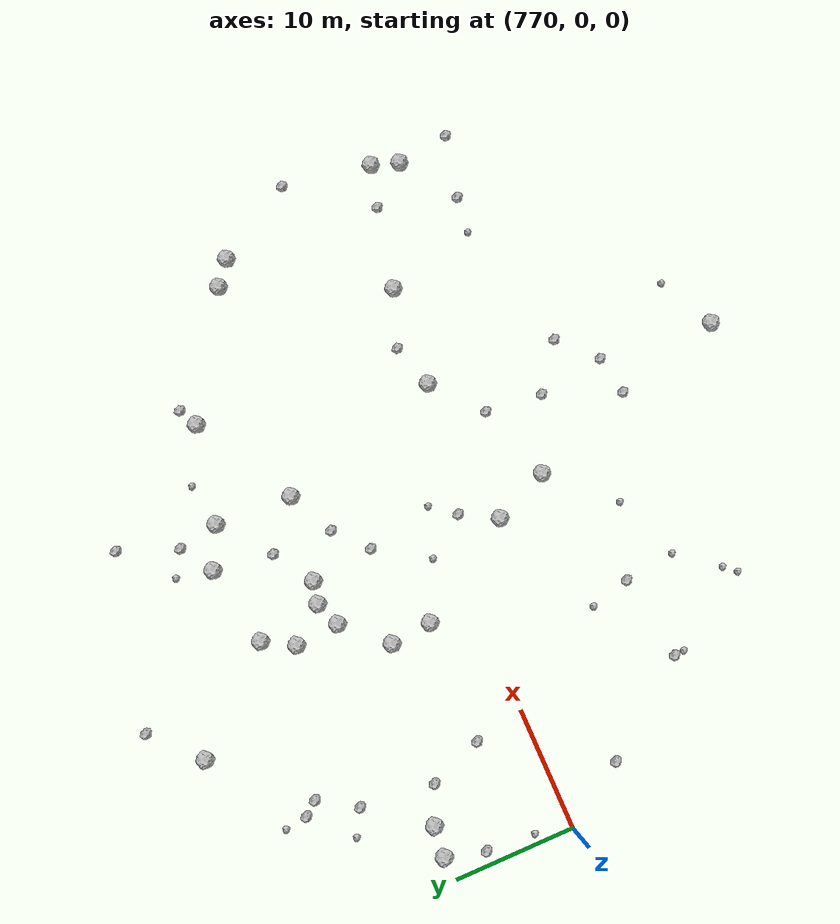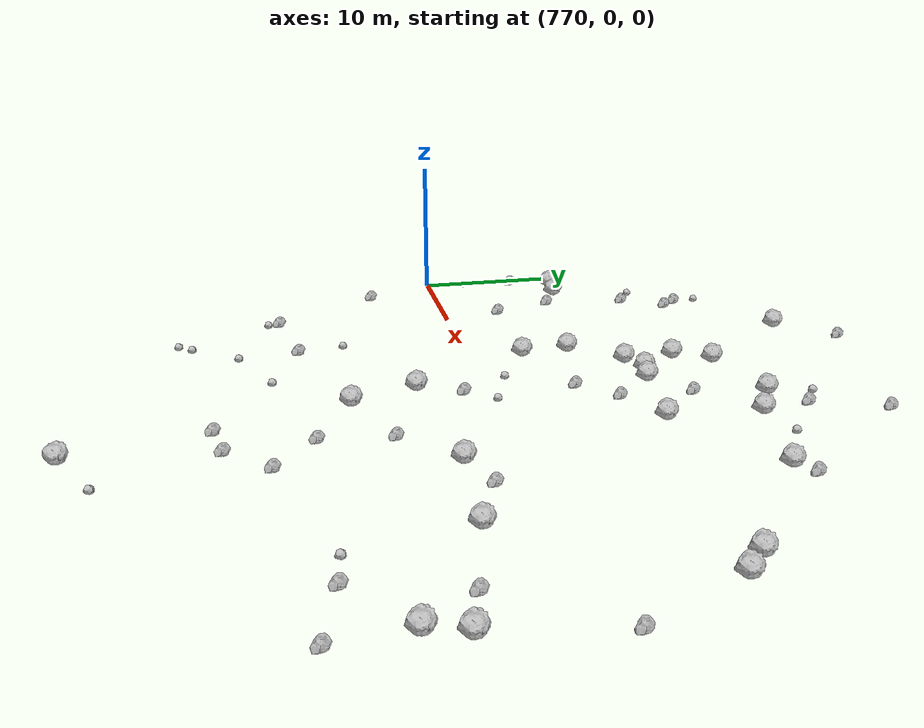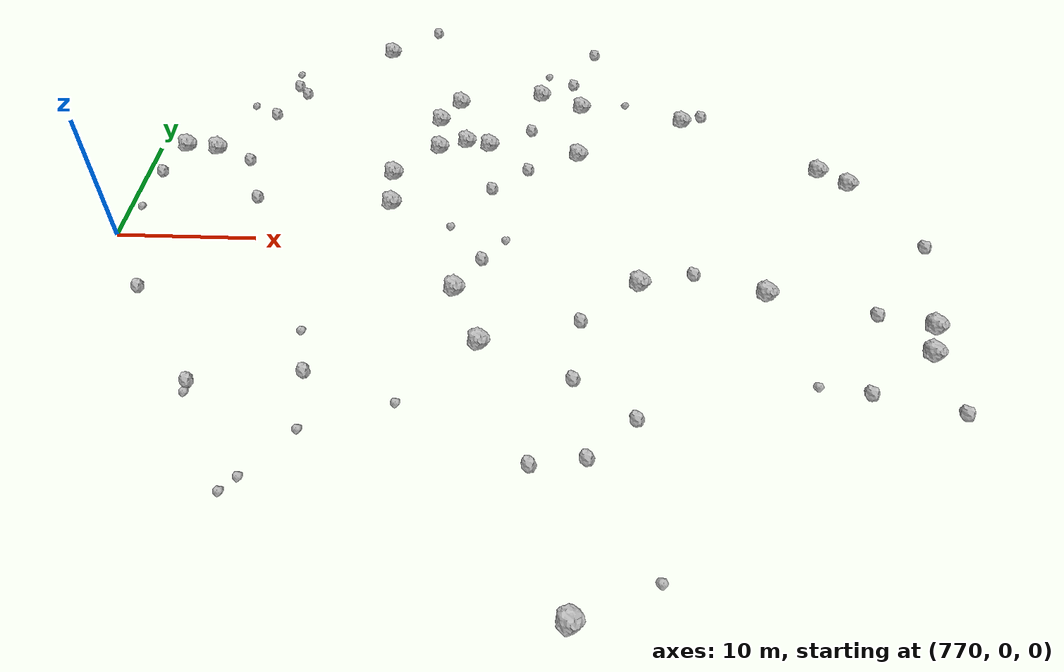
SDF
<sdf version="1.6">
 <world name="default">
  <include><uri>model://sun</uri></include>
  <model name="rock1_20_4">
   <include><uri>model://rock1</uri><pose>825.1159567119994 -8.928115866513519 0.5 0 0 0</pose></include>
  </model>
  <model name="rock1_20_5">
   <include><uri>model://rock1</uri><pose>796.6106471966281 -9.159278414295589 0.5 0 0 0</pose></include>
  </model>
  <model name="rock1_20_6">
   <include><uri>model://rock1</uri><pose>793.2404712534685 16.84364570168505 0.5 0 0 0</pose></include>
  </model>
  <model name="rock1_20_7">
   <include><uri>model://rock1</uri><pose>794.1576030809147 11.53259492437391 0.5 0 0 0</pose></include>
  </model>
  <model name="rock1_20_8">
   <include><uri>model://rock1</uri><pose>802.9822553610561 10.15346565613897 0.5 0 0 0</pose></include>
  </model>
  <model name="rock1_20_9">
   <include><uri>model://rock1</uri><pose>788.8969037220529 7.335678820650372 0.5 0 0 0</pose></include>
  </model>
  <model name="rock1_20_10">
   <include><uri>model://rock1</uri><pose>795.9815703103567 11.134845317435193 0.5 0 0 0</pose></include>
  </model>
  <model name="rock1_20_11">
   <include><uri>model://rock1</uri><pose>802.4278541936328 -26.90009056219109 0.5 0 0 0</pose></include>
  </model>
  <model name="rock1_20_12">
   <include><uri>model://rock1</uri><pose>815.4536748302243 -4.223381143897452 0.5 0 0 0</pose></include>
  </model>
  <model name="rock1_20_13">
   <include><uri>model://rock1</uri><pose>792.0657279402916 10.699101751017686 0.5 0 0 0</pose></include>
  </model>
  <model name="rock1_20_14">
   <include><uri>model://rock1</uri><pose>825.882422189791 -6.670033148492568 0.5 0 0 0</pose></include>
  </model>
  <model name="rock1_20_15">
   <include><uri>model://rock1</uri><pose>789.2179958465065 3.9065360014740094 0.5 0 0 0</pose></include>
  </model>
  <model name="rock1_20_16">
   <include><uri>model://rock1</uri><pose>821.3071238287417 8.9006561176977 0.5 0 0 0</pose></include>
  </model>
  <model name="rock1_20_17">
   <include><uri>model://rock1</uri><pose>807.0481330692334 -3.6402839456061393 0.5 0 0 0</pose></include>
  </model>
  <model name="rock1_20_18">
   <include><uri>model://rock1</uri><pose>803.2871262267237 16.54584143368585 0.5 0 0 0</pose></include>
  </model>
  <model name="rock1_20_19">
   <include><uri>model://rock1</uri><pose>772.0884436128662 10.144734424023568 0.5 0 0 0</pose></include>
  </model>
  <model name="rock1_20_20">
   <include><uri>model://rock1</uri><pose>791.8145706675144 14.331031263290726 0.5 0 0 0</pose></include>
  </model>
  <model name="rock1_20_21">
   <include><uri>model://rock1</uri><pose>811.4343939284064 14.899835773670212 0.5 0 0 0</pose></include>
  </model>
  <model name="rock1_20_22">
   <include><uri>model://rock1</uri><pose>823.2556053300042 7.392306435198776 0.5 0 0 0</pose></include>
  </model>
  <model name="rock1_20_23">
   <include><uri>model://rock1</uri><pose>794.6368168786759 -4.583555178718992 0.5 0 0 0</pose></include>
  </model>
  <model name="rock1_20_24">
   <include><uri>model://rock1</uri><pose>786.4369616322493 24.384099663664486 0.5 0 0 0</pose></include>
  </model>
  <model name="rock1_20_25">
   <include><uri>model://rock1</uri><pose>799.955891548536 18.168966447560912 0.5 0 0 0</pose></include>
  </model>
  <model name="rock1_20_26">
   <include><uri>model://rock1</uri><pose>774.5832831029351 9.895518718811516 0.5 0 0 0</pose></include>
  </model>
  <model name="rock2_20_0">
   <include><uri>model://rock2</uri><pose>825.7671949158455 -13.41481922267079 0.3 0 0 0</pose></include>
  </model>
  <model name="rock2_20_1">
   <include><uri>model://rock2</uri><pose>799.2330110080585 13.265468129560283 0.3 0 0 0</pose></include>
  </model>
  <model name="rock2_20_2">
   <include><uri>model://rock2</uri><pose>786.013915224378 -11.879575244355866 0.3 0 0 0</pose></include>
  </model>
  <model name="rock2_20_3">
   <include><uri>model://rock2</uri><pose>803.0469571540467 -7.069023296466664 0.3 0 0 0</pose></include>
  </model>
  <model name="rock2_20_4">
   <include><uri>model://rock2</uri><pose>773.3754721233886 -5.18132096699048 0.3 0 0 0</pose></include>
  </model>
  <model name="rock2_20_5">
   <include><uri>model://rock2</uri><pose>778.1676009110859 14.690795406859309 0.3 0 0 0</pose></include>
  </model>
  <model name="rock2_20_6">
   <include><uri>model://rock2</uri><pose>777.506715085934 8.602867743687547 0.3 0 0 0</pose></include>
  </model>
  <model name="rock2_20_7">
   <include><uri>model://rock2</uri><pose>799.128663883559 8.265025157131184 0.3 0 0 0</pose></include>
  </model>
  <model name="rock2_20_8">
   <include><uri>model://rock2</uri><pose>790.1401271103475 27.95558336156865 0.3 0 0 0</pose></include>
  </model>
  <model name="rock2_20_9">
   <include><uri>model://rock2</uri><pose>771.1513464226414 6.94110135394007 0.3 0 0 0</pose></include>
  </model>
  <model name="rock2_20_10">
   <include><uri>model://rock2</uri><pose>796.4996205296937 5.910016975697303 0.3 0 0 0</pose></include>
  </model>
  <model name="rock2_20_11">
   <include><uri>model://rock2</uri><pose>802.5529272810104 -11.815918915711087 0.3 0 0 0</pose></include>
  </model>
  <model name="rock2_20_12">
   <include><uri>model://rock2</uri><pose>802.6117835167436 19.93698363188725 0.3 0 0 0</pose></include>
  </model>
  <model name="rock2_20_13">
   <include><uri>model://rock2</uri><pose>779.1657434721827 4.222650107796653 0.3 0 0 0</pose></include>
  </model>
  <model name="rock2_20_14">
   <include><uri>model://rock2</uri><pose>813.0376240772353 15.732575748918116 0.3 0 0 0</pose></include>
  </model>
  <model name="rock2_20_15">
   <include><uri>model://rock2</uri><pose>820.4981828302846 -12.180317434440056 0.3 0 0 0</pose></include>
  </model>
  <model name="rock2_20_16">
   <include><uri>model://rock2</uri><pose>803.3449318878586 -17.410069096962292 0.3 0 0 0</pose></include>
  </model>
  <model name="rock2_20_17">
   <include><uri>model://rock2</uri><pose>779.0715403292406 -12.90045957012363 0.3 0 0 0</pose></include>
  </model>
  <model name="rock2_20_18">
   <include><uri>model://rock2</uri><pose>780.0908371127664 17.729604083333662 0.3 0 0 0</pose></include>
  </model>
  <model name="rock2_20_19">
   <include><uri>model://rock2</uri><pose>800.0728176426862 -17.9671637516431 0.3 0 0 0</pose></include>
  </model>
  <model name="rock2_20_20">
   <include><uri>model://rock2</uri><pose>810.7412772122294 -2.5473410786889588 0.3 0 0 0</pose></include>
  </model>
  <model name="rock2_20_21">
   <include><uri>model://rock2</uri><pose>822.3543629308505 -5.744179394091329 0.3 0 0 0</pose></include>
  </model>
  <model name="rock2_20_22">
   <include><uri>model://rock2</uri><pose>779.1995928312784 18.821973160212032 0.3 0 0 0</pose></include>
  </model>
  <model name="rock2_20_23">
   <include><uri>model://rock2</uri><pose>796.2576509318035 -1.643153481019361 0.3 0 0 0</pose></include>
  </model>
  <model name="rock2_20_24">
   <include><uri>model://rock2</uri><pose>827.1543710241053 0.8059420190898976 0.3 0 0 0</pose></include>
  </model>
  <model name="rock2_20_25">
   <include><uri>model://rock2</uri><pose>806.2986717150733 -14.617246736100407 0.3 0 0 0</pose></include>
  </model>
  <model name="rock2_20_26">
   <include><uri>model://rock2</uri><pose>804.4817471081407 24.762578597393734 0.3 0 0 0</pose></include>
  </model>
  <model name="rock3_20_0">
   <include><uri>model://rock3</uri><pose>793.7605933646513 1.629275428622556 0.2 0 0 0</pose></include>
  </model>
  <model name="rock3_20_1">
   <include><uri>model://rock3</uri><pose>786.5028719522279 -16.136266444934442 0.2 0 0 0</pose></include>
  </model>
  <model name="rock3_20_2">
   <include><uri>model://rock3</uri><pose>806.8927089660892 17.161983733695934 0.2 0 0 0</pose></include>
  </model>
  <model name="rock3_20_3">
   <include><uri>model://rock3</uri><pose>783.8953975226977 -19.41299296939093 0.2 0 0 0</pose></include>
  </model>
  <model name="rock3_20_4">
   <include><uri>model://rock3</uri><pose>817.4082287315332 -11.810526486082182 0.2 0 0 0</pose></include>
  </model>
  <model name="rock3_20_5">
   <include><uri>model://rock3</uri><pose>797.7978483550717 0.31233537871865735 0.2 0 0 0</pose></include>
  </model>
  <model name="rock3_20_6">
   <include><uri>model://rock3</uri><pose>770.8236024810521 2.9088517645241865 0.2 0 0 0</pose></include>
  </model>
  <model name="rock3_20_7">
   <include><uri>model://rock3</uri><pose>779.0867874172261 -13.749573481718151 0.2 0 0 0</pose></include>
  </model>
  <model name="rock3_20_8">
   <include><uri>model://rock3</uri><pose>783.077234612027 -20.371984097542743 0.2 0 0 0</pose></include>
  </model>
  <model name="rock3_20_9">
   <include><uri>model://rock3</uri><pose>807.0699299002372 -24.683233227338476 0.2 0 0 0</pose></include>
  </model>
  <model name="rock3_20_10">
   <include><uri>model://rock3</uri><pose>791.9564200621993 -14.039161075416617 0.2 0 0 0</pose></include>
  </model>
  <model name="rock3_20_11">
   <include><uri>model://rock3</uri><pose>800.5083220212697 21.149963883572866 0.2 0 0 0</pose></include>
  </model>
  <model name="rock3_20_12">
   <include><uri>model://rock3</uri><pose>785.1381627561445 -8.623279369225596 0.2 0 0 0</pose></include>
  </model>
  <model name="rock3_20_13">
   <include><uri>model://rock3</uri><pose>778.8875727222587 20.646631036647108 0.2 0 0 0</pose></include>
  </model>
  <model name="rock3_20_14">
   <include><uri>model://rock3</uri><pose>776.1113300692532 15.823268275749868 0.2 0 0 0</pose></include>
  </model>
 </world>
</sdf>
